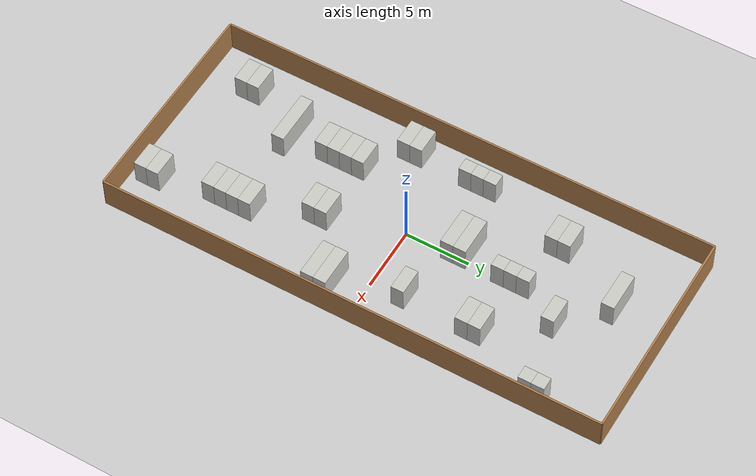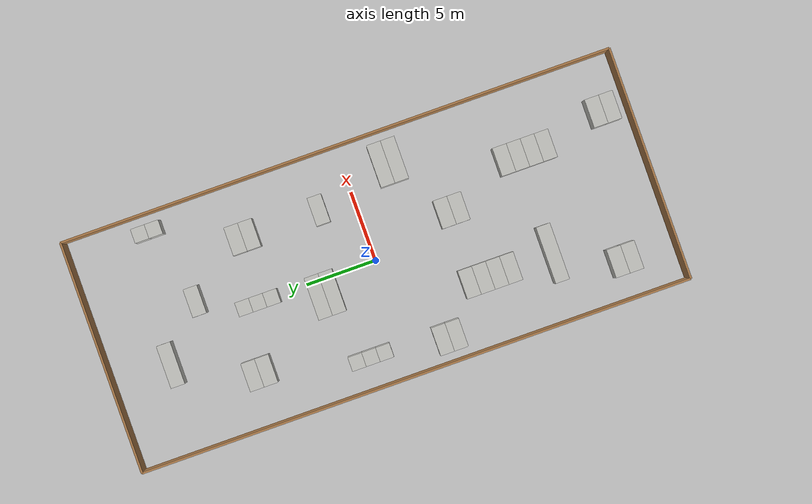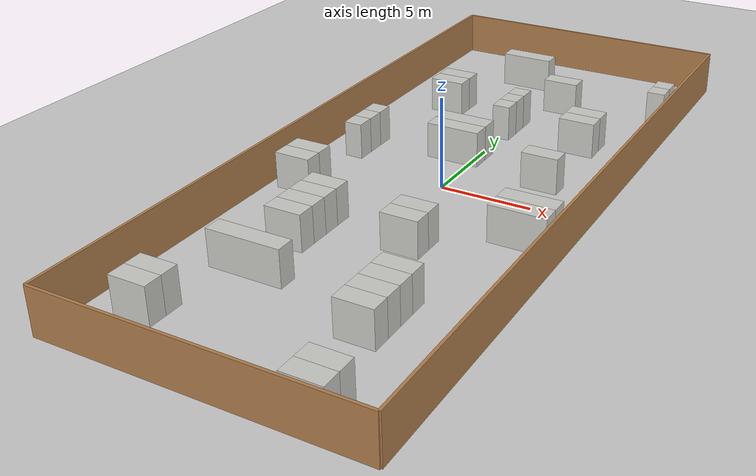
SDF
<sdf version="1.7">
 <world name="default">
  <light name="sun" type="directional">
   <pose>0 0 10 0 0 0</pose>
   <diffuse>0.8 0.8 0.8 1</diffuse>
   <specular>0.2 0.2 0.2 1</specular>
   <attenuation>
    <range>1000</range>
    <constant>0.9</constant>
    <linear>0.01</linear>
    <quadratic>0.001</quadratic>
   </attenuation>
   <direction>-0.5 0.1 -0.9</direction>
  </light>
  <model name="ground_plane">
   <static>1</static>
   <link name="link">
    <collision name="collision">
     <geometry><plane><normal>0 0 1</normal><size>120.0 60.0</size></plane></geometry>
     <surface>
      <contact><collide_bitmask>65535</collide_bitmask></contact>
      <friction><ode><mu>100</mu><mu2>50</mu2></ode></friction>
     </surface>
    </collision>
    <visual name="visual">
     <cast_shadows>0</cast_shadows>
     <geometry><plane><normal>0 0 1</normal><size>120.0 60.0</size></plane></geometry>
     <material>
      <script><uri>file://media/materials/scripts/gazebo.material</uri><name>Gazebo/Grey</name></script>
     </material>
    </visual>
   </link>
  </model>
  <model name="map_outer_wall_top">
   <static>true</static>
   <pose>0.000 19.700 1.250 0 0 0.0000</pose>
   <link name="link">
    <collision name="collision"><geometry><box><size>16.540 0.150 2.500</size></box></geometry></collision>
    <visual name="visual">
     <geometry><box><size>16.540 0.150 2.500</size></box></geometry>
     <material>
      <script><uri>file://media/materials/scripts/gazebo.material</uri><name>Gazebo/Wood</name></script>
      <ambient>1 1 1 1</ambient>
     </material>
    </visual>
   </link>
  </model>
  <model name="map_outer_wall_bottom">
   <static>true</static>
   <pose>0.000 -19.700 1.250 0 0 0.0000</pose>
   <link name="link">
    <collision name="collision"><geometry><box><size>16.540 0.150 2.500</size></box></geometry></collision>
    <visual name="visual">
     <geometry><box><size>16.540 0.150 2.500</size></box></geometry>
     <material>
      <script><uri>file://media/materials/scripts/gazebo.material</uri><name>Gazebo/Wood</name></script>
      <ambient>1 1 1 1</ambient>
     </material>
    </visual>
   </link>
  </model>
  <model name="map_outer_wall_left">
   <static>true</static>
   <pose>-8.270 0.000 1.250 0 0 1.5708</pose>
   <link name="link">
    <collision name="collision"><geometry><box><size>39.400 0.150 2.500</size></box></geometry></collision>
    <visual name="visual">
     <geometry><box><size>39.400 0.150 2.500</size></box></geometry>
     <material>
      <script><uri>file://media/materials/scripts/gazebo.material</uri><name>Gazebo/Wood</name></script>
      <ambient>1 1 1 1</ambient>
     </material>
    </visual>
   </link>
  </model>
  <model name="map_outer_wall_right">
   <static>true</static>
   <pose>8.270 0.000 1.250 0 0 1.5708</pose>
   <link name="link">
    <collision name="collision"><geometry><box><size>39.400 0.150 2.500</size></box></geometry></collision>
    <visual name="visual">
     <geometry><box><size>39.400 0.150 2.500</size></box></geometry>
     <material>
      <script><uri>file://media/materials/scripts/gazebo.material</uri><name>Gazebo/Wood</name></script>
      <ambient>1 1 1 1</ambient>
     </material>
    </visual>
   </link>
  </model>
  <model name="map_static_0">
   <static>true</static>
   <pose>-2.020 15.500 1.000 0 0 0.0000</pose>
   <link name="link">
    <collision name="collision"><geometry><box><size>3.030 1.000 2.000</size></box></geometry></collision>
    <visual name="visual">
     <geometry><box><size>3.030 1.000 2.000</size></box></geometry>
     <material>
      <script><uri>file://media/materials/scripts/gazebo.material</uri><name>Gazebo/CeilingTiled</name></script>
      <ambient>0.921569 0.807843 0.615686 1</ambient>
     </material>
    </visual>
   </link>
  </model>
  <model name="map_static_1">
   <static>true</static>
   <pose>7.070 14.500 1.000 0 0 0.0000</pose>
   <link name="link">
    <collision name="collision"><geometry><box><size>1.010 1.000 2.000</size></box></geometry></collision>
    <visual name="visual">
     <geometry><box><size>1.010 1.000 2.000</size></box></geometry>
     <material>
      <script><uri>file://media/materials/scripts/gazebo.material</uri><name>Gazebo/CeilingTiled</name></script>
      <ambient>0.921569 0.807843 0.615686 1</ambient>
     </material>
    </visual>
   </link>
  </model>
  <model name="map_static_2">
   <static>true</static>
   <pose>7.070 13.500 1.000 0 0 0.0000</pose>
   <link name="link">
    <collision name="collision"><geometry><box><size>1.010 1.000 2.000</size></box></geometry></collision>
    <visual name="visual">
     <geometry><box><size>1.010 1.000 2.000</size></box></geometry>
     <material>
      <script><uri>file://media/materials/scripts/gazebo.material</uri><name>Gazebo/CeilingTiled</name></script>
      <ambient>0.921569 0.807843 0.615686 1</ambient>
     </material>
    </visual>
   </link>
  </model>
  <model name="map_static_3">
   <static>true</static>
   <pose>1.515 12.500 1.000 0 0 0.0000</pose>
   <link name="link">
    <collision name="collision"><geometry><box><size>2.020 1.000 2.000</size></box></geometry></collision>
    <visual name="visual">
     <geometry><box><size>2.020 1.000 2.000</size></box></geometry>
     <material>
      <script><uri>file://media/materials/scripts/gazebo.material</uri><name>Gazebo/CeilingTiled</name></script>
      <ambient>0.921569 0.807843 0.615686 1</ambient>
     </material>
    </visual>
   </link>
  </model>
  <model name="map_static_4">
   <static>true</static>
   <pose>-4.545 10.500 1.000 0 0 0.0000</pose>
   <link name="link">
    <collision name="collision"><geometry><box><size>2.020 1.000 2.000</size></box></geometry></collision>
    <visual name="visual">
     <geometry><box><size>2.020 1.000 2.000</size></box></geometry>
     <material>
      <script><uri>file://media/materials/scripts/gazebo.material</uri><name>Gazebo/CeilingTiled</name></script>
      <ambient>0.921569 0.807843 0.615686 1</ambient>
     </material>
    </visual>
   </link>
  </model>
  <model name="map_static_5">
   <static>true</static>
   <pose>-4.545 9.500 1.000 0 0 0.0000</pose>
   <link name="link">
    <collision name="collision"><geometry><box><size>2.020 1.000 2.000</size></box></geometry></collision>
    <visual name="visual">
     <geometry><box><size>2.020 1.000 2.000</size></box></geometry>
     <material>
      <script><uri>file://media/materials/scripts/gazebo.material</uri><name>Gazebo/CeilingTiled</name></script>
      <ambient>0.921569 0.807843 0.615686 1</ambient>
     </material>
    </visual>
   </link>
  </model>
  <model name="map_static_6">
   <static>true</static>
   <pose>0.000 9.500 1.000 0 0 0.0000</pose>
   <link name="link">
    <collision name="collision"><geometry><box><size>1.010 1.000 2.000</size></box></geometry></collision>
    <visual name="visual">
     <geometry><box><size>1.010 1.000 2.000</size></box></geometry>
     <material>
      <script><uri>file://media/materials/scripts/gazebo.material</uri><name>Gazebo/CeilingTiled</name></script>
      <ambient>0.921569 0.807843 0.615686 1</ambient>
     </material>
    </visual>
   </link>
  </model>
  <model name="map_static_7">
   <static>true</static>
   <pose>0.000 8.500 1.000 0 0 0.0000</pose>
   <link name="link">
    <collision name="collision"><geometry><box><size>1.010 1.000 2.000</size></box></geometry></collision>
    <visual name="visual">
     <geometry><box><size>1.010 1.000 2.000</size></box></geometry>
     <material>
      <script><uri>file://media/materials/scripts/gazebo.material</uri><name>Gazebo/CeilingTiled</name></script>
      <ambient>0.921569 0.807843 0.615686 1</ambient>
     </material>
    </visual>
   </link>
  </model>
  <model name="map_static_8">
   <static>true</static>
   <pose>4.545 8.500 1.000 0 0 0.0000</pose>
   <link name="link">
    <collision name="collision"><geometry><box><size>2.020 1.000 2.000</size></box></geometry></collision>
    <visual name="visual">
     <geometry><box><size>2.020 1.000 2.000</size></box></geometry>
     <material>
      <script><uri>file://media/materials/scripts/gazebo.material</uri><name>Gazebo/CeilingTiled</name></script>
      <ambient>0.921569 0.807843 0.615686 1</ambient>
     </material>
    </visual>
   </link>
  </model>
  <model name="map_static_9">
   <static>true</static>
   <pose>0.000 7.500 1.000 0 0 0.0000</pose>
   <link name="link">
    <collision name="collision"><geometry><box><size>1.010 1.000 2.000</size></box></geometry></collision>
    <visual name="visual">
     <geometry><box><size>1.010 1.000 2.000</size></box></geometry>
     <material>
      <script><uri>file://media/materials/scripts/gazebo.material</uri><name>Gazebo/CeilingTiled</name></script>
      <ambient>0.921569 0.807843 0.615686 1</ambient>
     </material>
    </visual>
   </link>
  </model>
  <model name="map_static_10">
   <static>true</static>
   <pose>4.545 7.500 1.000 0 0 0.0000</pose>
   <link name="link">
    <collision name="collision"><geometry><box><size>2.020 1.000 2.000</size></box></geometry></collision>
    <visual name="visual">
     <geometry><box><size>2.020 1.000 2.000</size></box></geometry>
     <material>
      <script><uri>file://media/materials/scripts/gazebo.material</uri><name>Gazebo/CeilingTiled</name></script>
      <ambient>0.921569 0.807843 0.615686 1</ambient>
     </material>
    </visual>
   </link>
  </model>
  <model name="map_static_11">
   <static>true</static>
   <pose>-1.010 4.500 1.000 0 0 0.0000</pose>
   <link name="link">
    <collision name="collision"><geometry><box><size>3.030 1.000 2.000</size></box></geometry></collision>
    <visual name="visual">
     <geometry><box><size>3.030 1.000 2.000</size></box></geometry>
     <material>
      <script><uri>file://media/materials/scripts/gazebo.material</uri><name>Gazebo/CeilingTiled</name></script>
      <ambient>0.921569 0.807843 0.615686 1</ambient>
     </material>
    </visual>
   </link>
  </model>
  <model name="map_static_12">
   <static>true</static>
   <pose>-6.060 3.500 1.000 0 0 0.0000</pose>
   <link name="link">
    <collision name="collision"><geometry><box><size>1.010 1.000 2.000</size></box></geometry></collision>
    <visual name="visual">
     <geometry><box><size>1.010 1.000 2.000</size></box></geometry>
     <material>
      <script><uri>file://media/materials/scripts/gazebo.material</uri><name>Gazebo/CeilingTiled</name></script>
      <ambient>0.921569 0.807843 0.615686 1</ambient>
     </material>
    </visual>
   </link>
  </model>
  <model name="map_static_13">
   <static>true</static>
   <pose>-1.010 3.500 1.000 0 0 0.0000</pose>
   <link name="link">
    <collision name="collision"><geometry><box><size>3.030 1.000 2.000</size></box></geometry></collision>
    <visual name="visual">
     <geometry><box><size>3.030 1.000 2.000</size></box></geometry>
     <material>
      <script><uri>file://media/materials/scripts/gazebo.material</uri><name>Gazebo/CeilingTiled</name></script>
      <ambient>0.921569 0.807843 0.615686 1</ambient>
     </material>
    </visual>
   </link>
  </model>
  <model name="map_static_14">
   <static>true</static>
   <pose>-6.060 2.500 1.000 0 0 0.0000</pose>
   <link name="link">
    <collision name="collision"><geometry><box><size>1.010 1.000 2.000</size></box></geometry></collision>
    <visual name="visual">
     <geometry><box><size>1.010 1.000 2.000</size></box></geometry>
     <material>
      <script><uri>file://media/materials/scripts/gazebo.material</uri><name>Gazebo/CeilingTiled</name></script>
      <ambient>0.921569 0.807843 0.615686 1</ambient>
     </material>
    </visual>
   </link>
  </model>
  <model name="map_static_15">
   <static>true</static>
   <pose>4.545 2.500 1.000 0 0 0.0000</pose>
   <link name="link">
    <collision name="collision"><geometry><box><size>2.020 1.000 2.000</size></box></geometry></collision>
    <visual name="visual">
     <geometry><box><size>2.020 1.000 2.000</size></box></geometry>
     <material>
      <script><uri>file://media/materials/scripts/gazebo.material</uri><name>Gazebo/CeilingTiled</name></script>
      <ambient>0.921569 0.807843 0.615686 1</ambient>
     </material>
    </visual>
   </link>
  </model>
  <model name="map_static_16">
   <static>true</static>
   <pose>-6.060 1.500 1.000 0 0 0.0000</pose>
   <link name="link">
    <collision name="collision"><geometry><box><size>1.010 1.000 2.000</size></box></geometry></collision>
    <visual name="visual">
     <geometry><box><size>1.010 1.000 2.000</size></box></geometry>
     <material>
      <script><uri>file://media/materials/scripts/gazebo.material</uri><name>Gazebo/CeilingTiled</name></script>
      <ambient>0.921569 0.807843 0.615686 1</ambient>
     </material>
    </visual>
   </link>
  </model>
  <model name="map_static_17">
   <static>true</static>
   <pose>-6.565 -2.500 1.000 0 0 0.0000</pose>
   <link name="link">
    <collision name="collision"><geometry><box><size>2.020 1.000 2.000</size></box></geometry></collision>
    <visual name="visual">
     <geometry><box><size>2.020 1.000 2.000</size></box></geometry>
     <material>
      <script><uri>file://media/materials/scripts/gazebo.material</uri><name>Gazebo/CeilingTiled</name></script>
      <ambient>0.921569 0.807843 0.615686 1</ambient>
     </material>
    </visual>
   </link>
  </model>
  <model name="map_static_18">
   <static>true</static>
   <pose>6.060 -2.500 1.000 0 0 0.0000</pose>
   <link name="link">
    <collision name="collision"><geometry><box><size>3.030 1.000 2.000</size></box></geometry></collision>
    <visual name="visual">
     <geometry><box><size>3.030 1.000 2.000</size></box></geometry>
     <material>
      <script><uri>file://media/materials/scripts/gazebo.material</uri><name>Gazebo/CeilingTiled</name></script>
      <ambient>0.921569 0.807843 0.615686 1</ambient>
     </material>
    </visual>
   </link>
  </model>
  <model name="map_static_19">
   <static>true</static>
   <pose>-6.565 -3.500 1.000 0 0 0.0000</pose>
   <link name="link">
    <collision name="collision"><geometry><box><size>2.020 1.000 2.000</size></box></geometry></collision>
    <visual name="visual">
     <geometry><box><size>2.020 1.000 2.000</size></box></geometry>
     <material>
      <script><uri>file://media/materials/scripts/gazebo.material</uri><name>Gazebo/CeilingTiled</name></script>
      <ambient>0.921569 0.807843 0.615686 1</ambient>
     </material>
    </visual>
   </link>
  </model>
  <model name="map_static_20">
   <static>true</static>
   <pose>6.060 -3.500 1.000 0 0 0.0000</pose>
   <link name="link">
    <collision name="collision"><geometry><box><size>3.030 1.000 2.000</size></box></geometry></collision>
    <visual name="visual">
     <geometry><box><size>3.030 1.000 2.000</size></box></geometry>
     <material>
      <script><uri>file://media/materials/scripts/gazebo.material</uri><name>Gazebo/CeilingTiled</name></script>
      <ambient>0.921569 0.807843 0.615686 1</ambient>
     </material>
    </visual>
   </link>
  </model>
  <model name="map_static_21">
   <static>true</static>
   <pose>-3.535 -5.500 1.000 0 0 0.0000</pose>
   <link name="link">
    <collision name="collision"><geometry><box><size>2.020 1.000 2.000</size></box></geometry></collision>
    <visual name="visual">
     <geometry><box><size>2.020 1.000 2.000</size></box></geometry>
     <material>
      <script><uri>file://media/materials/scripts/gazebo.material</uri><name>Gazebo/CeilingTiled</name></script>
      <ambient>0.921569 0.807843 0.615686 1</ambient>
     </material>
    </visual>
   </link>
  </model>
  <model name="map_static_22">
   <static>true</static>
   <pose>1.515 -5.500 1.000 0 0 0.0000</pose>
   <link name="link">
    <collision name="collision"><geometry><box><size>2.020 1.000 2.000</size></box></geometry></collision>
    <visual name="visual">
     <geometry><box><size>2.020 1.000 2.000</size></box></geometry>
     <material>
      <script><uri>file://media/materials/scripts/gazebo.material</uri><name>Gazebo/CeilingTiled</name></script>
      <ambient>0.921569 0.807843 0.615686 1</ambient>
     </material>
    </visual>
   </link>
  </model>
  <model name="map_static_23">
   <static>true</static>
   <pose>-3.535 -6.500 1.000 0 0 0.0000</pose>
   <link name="link">
    <collision name="collision"><geometry><box><size>2.020 1.000 2.000</size></box></geometry></collision>
    <visual name="visual">
     <geometry><box><size>2.020 1.000 2.000</size></box></geometry>
     <material>
      <script><uri>file://media/materials/scripts/gazebo.material</uri><name>Gazebo/CeilingTiled</name></script>
      <ambient>0.921569 0.807843 0.615686 1</ambient>
     </material>
    </visual>
   </link>
  </model>
  <model name="map_static_24">
   <static>true</static>
   <pose>1.515 -6.500 1.000 0 0 0.0000</pose>
   <link name="link">
    <collision name="collision"><geometry><box><size>2.020 1.000 2.000</size></box></geometry></collision>
    <visual name="visual">
     <geometry><box><size>2.020 1.000 2.000</size></box></geometry>
     <material>
      <script><uri>file://media/materials/scripts/gazebo.material</uri><name>Gazebo/CeilingTiled</name></script>
      <ambient>0.921569 0.807843 0.615686 1</ambient>
     </material>
    </visual>
   </link>
  </model>
  <model name="map_static_25">
   <static>true</static>
   <pose>-3.535 -7.500 1.000 0 0 0.0000</pose>
   <link name="link">
    <collision name="collision"><geometry><box><size>2.020 1.000 2.000</size></box></geometry></collision>
    <visual name="visual">
     <geometry><box><size>2.020 1.000 2.000</size></box></geometry>
     <material>
      <script><uri>file://media/materials/scripts/gazebo.material</uri><name>Gazebo/CeilingTiled</name></script>
      <ambient>0.921569 0.807843 0.615686 1</ambient>
     </material>
    </visual>
   </link>
  </model>
  <model name="map_static_26">
   <static>true</static>
   <pose>-3.535 -8.500 1.000 0 0 0.0000</pose>
   <link name="link">
    <collision name="collision"><geometry><box><size>2.020 1.000 2.000</size></box></geometry></collision>
    <visual name="visual">
     <geometry><box><size>2.020 1.000 2.000</size></box></geometry>
     <material>
      <script><uri>file://media/materials/scripts/gazebo.material</uri><name>Gazebo/CeilingTiled</name></script>
      <ambient>0.921569 0.807843 0.615686 1</ambient>
     </material>
    </visual>
   </link>
  </model>
  <model name="map_static_27">
   <static>true</static>
   <pose>3.535 -10.500 1.000 0 0 0.0000</pose>
   <link name="link">
    <collision name="collision"><geometry><box><size>2.020 1.000 2.000</size></box></geometry></collision>
    <visual name="visual">
     <geometry><box><size>2.020 1.000 2.000</size></box></geometry>
     <material>
      <script><uri>file://media/materials/scripts/gazebo.material</uri><name>Gazebo/CeilingTiled</name></script>
      <ambient>0.921569 0.807843 0.615686 1</ambient>
     </material>
    </visual>
   </link>
  </model>
  <model name="map_static_28">
   <static>true</static>
   <pose>-3.535 -11.500 1.000 0 0 0.0000</pose>
   <link name="link">
    <collision name="collision"><geometry><box><size>4.040 1.000 2.000</size></box></geometry></collision>
    <visual name="visual">
     <geometry><box><size>4.040 1.000 2.000</size></box></geometry>
     <material>
      <script><uri>file://media/materials/scripts/gazebo.material</uri><name>Gazebo/CeilingTiled</name></script>
      <ambient>0.921569 0.807843 0.615686 1</ambient>
     </material>
    </visual>
   </link>
  </model>
  <model name="map_static_29">
   <static>true</static>
   <pose>3.535 -11.500 1.000 0 0 0.0000</pose>
   <link name="link">
    <collision name="collision"><geometry><box><size>2.020 1.000 2.000</size></box></geometry></collision>
    <visual name="visual">
     <geometry><box><size>2.020 1.000 2.000</size></box></geometry>
     <material>
      <script><uri>file://media/materials/scripts/gazebo.material</uri><name>Gazebo/CeilingTiled</name></script>
      <ambient>0.921569 0.807843 0.615686 1</ambient>
     </material>
    </visual>
   </link>
  </model>
  <model name="map_static_30">
   <static>true</static>
   <pose>3.535 -12.500 1.000 0 0 0.0000</pose>
   <link name="link">
    <collision name="collision"><geometry><box><size>2.020 1.000 2.000</size></box></geometry></collision>
    <visual name="visual">
     <geometry><box><size>2.020 1.000 2.000</size></box></geometry>
     <material>
      <script><uri>file://media/materials/scripts/gazebo.material</uri><name>Gazebo/CeilingTiled</name></script>
      <ambient>0.921569 0.807843 0.615686 1</ambient>
     </material>
    </visual>
   </link>
  </model>
  <model name="map_static_31">
   <static>true</static>
   <pose>3.535 -13.500 1.000 0 0 0.0000</pose>
   <link name="link">
    <collision name="collision"><geometry><box><size>2.020 1.000 2.000</size></box></geometry></collision>
    <visual name="visual">
     <geometry><box><size>2.020 1.000 2.000</size></box></geometry>
     <material>
      <script><uri>file://media/materials/scripts/gazebo.material</uri><name>Gazebo/CeilingTiled</name></script>
      <ambient>0.921569 0.807843 0.615686 1</ambient>
     </material>
    </visual>
   </link>
  </model>
  <model name="map_static_32">
   <static>true</static>
   <pose>-5.555 -15.500 1.000 0 0 0.0000</pose>
   <link name="link">
    <collision name="collision"><geometry><box><size>2.020 1.000 2.000</size></box></geometry></collision>
    <visual name="visual">
     <geometry><box><size>2.020 1.000 2.000</size></box></geometry>
     <material>
      <script><uri>file://media/materials/scripts/gazebo.material</uri><name>Gazebo/CeilingTiled</name></script>
      <ambient>0.921569 0.807843 0.615686 1</ambient>
     </material>
    </visual>
   </link>
  </model>
  <model name="map_static_33">
   <static>true</static>
   <pose>-5.555 -16.500 1.000 0 0 0.0000</pose>
   <link name="link">
    <collision name="collision"><geometry><box><size>2.020 1.000 2.000</size></box></geometry></collision>
    <visual name="visual">
     <geometry><box><size>2.020 1.000 2.000</size></box></geometry>
     <material>
      <script><uri>file://media/materials/scripts/gazebo.material</uri><name>Gazebo/CeilingTiled</name></script>
      <ambient>0.921569 0.807843 0.615686 1</ambient>
     </material>
    </visual>
   </link>
  </model>
  <model name="map_static_34">
   <static>true</static>
   <pose>4.545 -17.500 1.000 0 0 0.0000</pose>
   <link name="link">
    <collision name="collision"><geometry><box><size>2.020 1.000 2.000</size></box></geometry></collision>
    <visual name="visual">
     <geometry><box><size>2.020 1.000 2.000</size></box></geometry>
     <material>
      <script><uri>file://media/materials/scripts/gazebo.material</uri><name>Gazebo/CeilingTiled</name></script>
      <ambient>0.921569 0.807843 0.615686 1</ambient>
     </material>
    </visual>
   </link>
  </model>
  <model name="map_static_35">
   <static>true</static>
   <pose>4.545 -18.500 1.000 0 0 0.0000</pose>
   <link name="link">
    <collision name="collision"><geometry><box><size>2.020 1.000 2.000</size></box></geometry></collision>
    <visual name="visual">
     <geometry><box><size>2.020 1.000 2.000</size></box></geometry>
     <material>
      <script><uri>file://media/materials/scripts/gazebo.material</uri><name>Gazebo/CeilingTiled</name></script>
      <ambient>0.921569 0.807843 0.615686 1</ambient>
     </material>
    </visual>
   </link>
  </model>
  <gravity>0 0 -9.8</gravity>
  <physics type="ode">
   <max_step_size>0.002</max_step_size>
   <real_time_factor>1</real_time_factor>
   <real_time_update_rate>500</real_time_update_rate>
  </physics>
  <scene><ambient>0.4 0.4 0.4 1</ambient><background>0.7 0.7 0.7 1</background><shadows>1</shadows></scene>
 </world>
</sdf>
